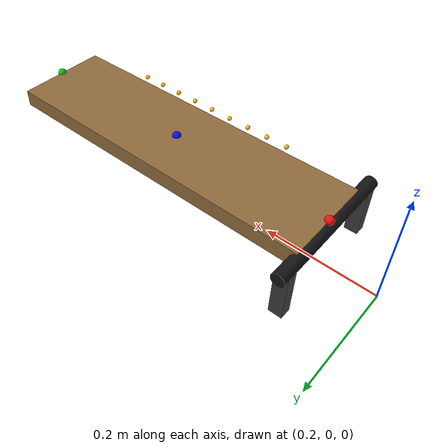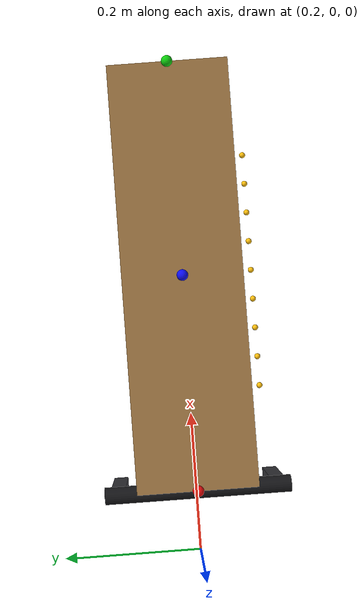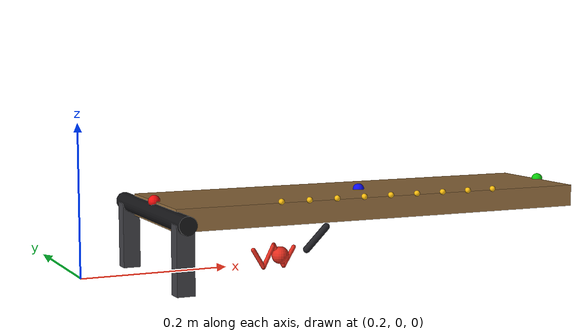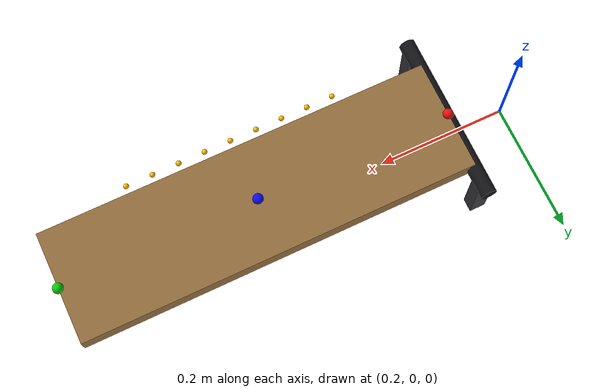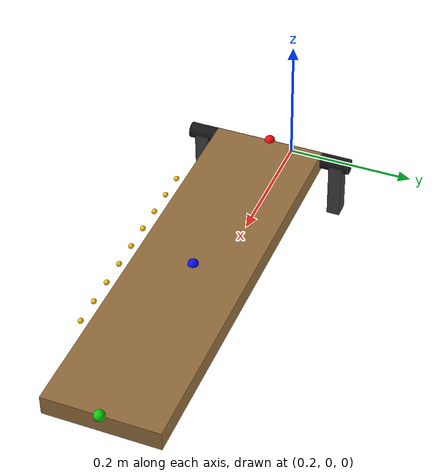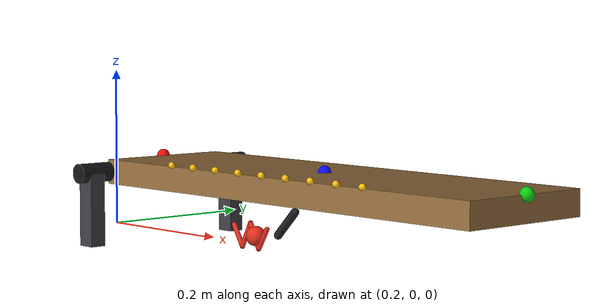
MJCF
<mujoco model="jrf_tilting_board_component">
    <compiler angle="radian" autolimits="true"/>

    <default>
        <joint damping="2.0" armature="0.05"/>
        <geom density="700" condim="3" friction="1.0 0.015 0.015" solref="0.012 1" solimp="0.86 0.995 0.001"/>
    </default>

    <worldbody>
        <!-- Component copy of the passive spring-loaded board used in scene.xml. -->
        <body name="board_support" pos="0.30 0 0.08">
            <geom name="hinge_stand_left" type="box" pos="0 -0.11 -0.045" size="0.012 0.010 0.045" rgba="0.24 0.24 0.26 1" contype="0" conaffinity="0"/>
            <geom name="hinge_stand_right" type="box" pos="0 0.11 -0.045" size="0.012 0.010 0.045" rgba="0.24 0.24 0.26 1" contype="0" conaffinity="0"/>
            <geom name="hinge_axle_visual" type="cylinder" pos="0 0 0" size="0.012 0.13" axisangle="1 0 0 1.5707963" rgba="0.08 0.08 0.09 1" contype="0" conaffinity="0"/>
            <geom name="spring_anchor" type="sphere" pos="0.18 0 -0.07" size="0.012" rgba="0.90 0.18 0.12 1" contype="0" conaffinity="0"/>
            <geom name="spring_visual_1" type="capsule" fromto="0.14 0 -0.060 0.155 0 -0.085" size="0.003" rgba="0.90 0.18 0.12 1" contype="0" conaffinity="0"/>
            <geom name="spring_visual_2" type="capsule" fromto="0.155 0 -0.085 0.170 0 -0.055" size="0.003" rgba="0.90 0.18 0.12 1" contype="0" conaffinity="0"/>
            <geom name="spring_visual_3" type="capsule" fromto="0.170 0 -0.055 0.185 0 -0.085" size="0.003" rgba="0.90 0.18 0.12 1" contype="0" conaffinity="0"/>
            <geom name="spring_visual_4" type="capsule" fromto="0.185 0 -0.085 0.200 0 -0.060" size="0.003" rgba="0.90 0.18 0.12 1" contype="0" conaffinity="0"/>
            <geom name="damper_visual" type="capsule" fromto="0.22 0 -0.065 0.25 0 -0.035" size="0.005" rgba="0.12 0.12 0.14 1" contype="0" conaffinity="0"/>
        </body>
        <body name="board_base" pos="0.30 0 0.08">
            <joint name="board_hinge" type="hinge" axis="0 -1 0" range="-0.65 0.65" stiffness="20.0" damping="1.2"/>
            <geom name="board_geom" type="box" pos="0.30 0 0" size="0.30 0.085 0.015"
                  density="250" rgba="0.58 0.43 0.24 1" contype="1" conaffinity="1"/>
            <site name="board_hinge_site" pos="0 0 0.015" size="0.008" rgba="0.95 0.05 0.05 1"/>
            <site name="trajectory_dot_0" pos="0.14 -0.095 0.018" size="0.004" rgba="1.0 0.75 0.05 1"/>
            <site name="trajectory_dot_1" pos="0.18 -0.095 0.018" size="0.004" rgba="1.0 0.75 0.05 1"/>
            <site name="trajectory_dot_2" pos="0.22 -0.095 0.018" size="0.004" rgba="1.0 0.75 0.05 1"/>
            <site name="trajectory_dot_3" pos="0.26 -0.095 0.018" size="0.004" rgba="1.0 0.75 0.05 1"/>
            <site name="trajectory_dot_4" pos="0.30 -0.095 0.018" size="0.004" rgba="1.0 0.75 0.05 1"/>
            <site name="trajectory_dot_5" pos="0.34 -0.095 0.018" size="0.004" rgba="1.0 0.75 0.05 1"/>
            <site name="trajectory_dot_6" pos="0.38 -0.095 0.018" size="0.004" rgba="1.0 0.75 0.05 1"/>
            <site name="trajectory_dot_7" pos="0.42 -0.095 0.018" size="0.004" rgba="1.0 0.75 0.05 1"/>
            <site name="trajectory_dot_8" pos="0.46 -0.095 0.018" size="0.004" rgba="1.0 0.75 0.05 1"/>
            <site name="board_mid_surface" pos="0.30 0 0.015" size="0.008" rgba="0.05 0.05 0.95 1"/>
            <site name="board_end_surface" pos="0.60 0 0.015" size="0.008" rgba="0.05 0.80 0.05 1"/>
        </body>
    </worldbody>
</mujoco>
